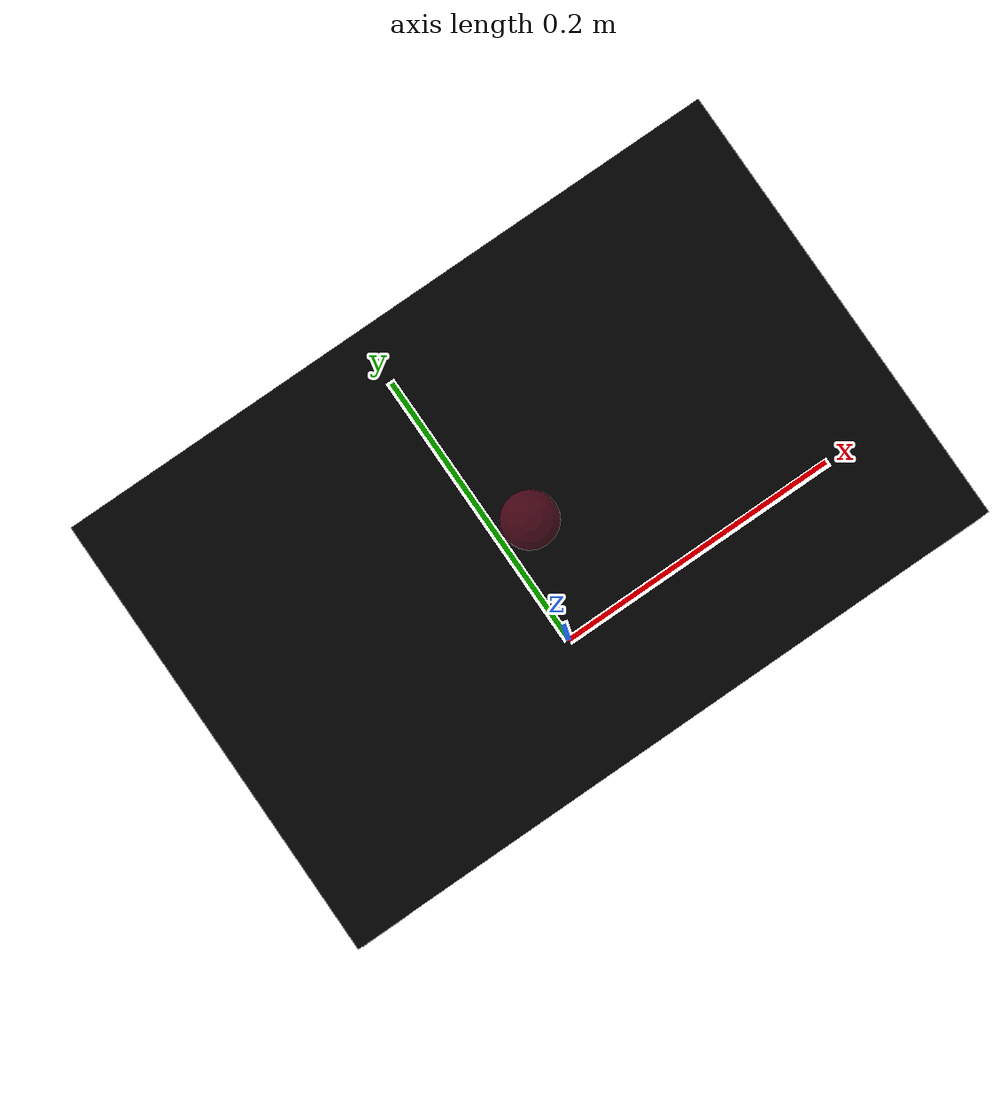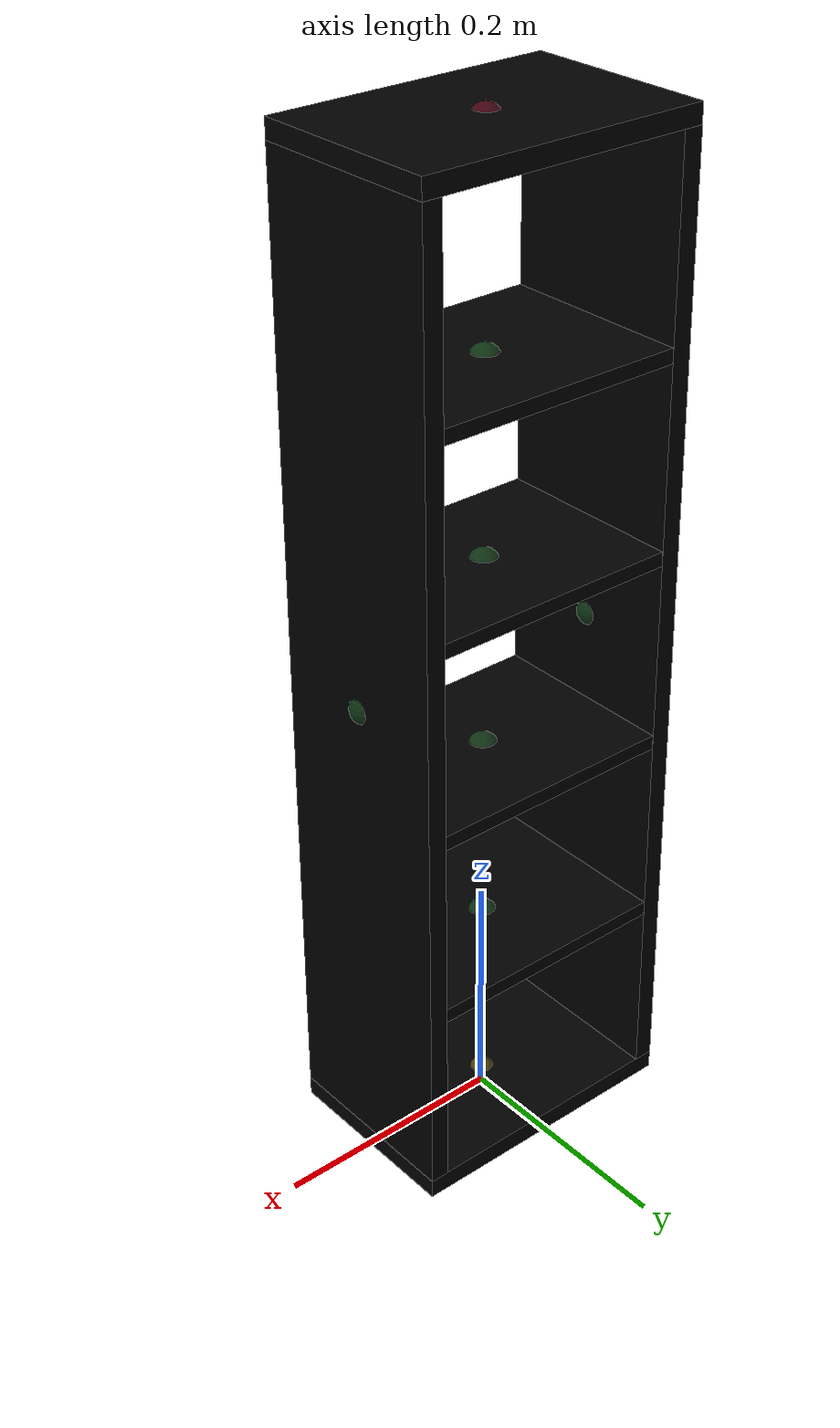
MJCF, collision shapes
<mujoco model="bookcase_expedit_0385">
  <custom>
    <numeric data="0.610909 0.185574 0.007996 0.0 -0.701463 0.712706 0.0" name="0_part0_initpos" />
    <numeric data="0.058502 0.312085 0.007896 0.707107 -1e-06 0.707107 1e-06" name="7_part7_initpos" />
    <numeric data="0.048989 0.082944 0.008098 0.000233 -0.707107 -0.000233 -0.707107" name="6_part6_initpos" />
    <numeric data="-0.494272 0.204526 0.008098 0.707633 0.0 -0.0 0.70658" name="5_part5_initpos" />
    <numeric data="-0.067446 -0.13918 0.006066 0.999964 -0.0 -0.0 -0.008531" name="4_part4_initpos" />
    <numeric data="0.484878 -0.138269 0.006169 0.999106 0.0 -0.0 0.042283" name="3_part3_initpos" />
    <numeric data="-0.336847 -0.116742 0.006066 0.99999 -0.0 -0.0 -0.004365" name="2_part2_initpos" />
    <numeric data="0.222327 -0.12981 0.006066 0.999952 0.0 0.0 -0.009838" name="1_part1_initpos" />
  </custom>
  <asset>
    <mesh file="bookcase_expedit_0385/0.stl" name="part0" scale="0.00064 0.00064 0.00064" />
    <mesh file="bookcase_expedit_0385/7.stl" name="part7" scale="0.00064 0.00064 0.00064" />
    <mesh file="bookcase_expedit_0385/6.stl" name="part6" scale="0.00064 0.00064 0.00064" />
    <mesh file="bookcase_expedit_0385/5.stl" name="part5" scale="0.00064 0.00064 0.00064" />
    <mesh file="bookcase_expedit_0385/4.stl" name="part4" scale="0.00064 0.00064 0.00064" />
    <mesh file="bookcase_expedit_0385/3.stl" name="part3" scale="0.00064 0.00064 0.00064" />
    <mesh file="bookcase_expedit_0385/2.stl" name="part2" scale="0.00064 0.00064 0.00064" />
    <mesh file="bookcase_expedit_0385/1.stl" name="part1" scale="0.00064 0.00064 0.00064" />
  </asset>
  <worldbody><body name="combined_body" pos="0 0 0.06940000000000004" quat="1 0 0 0"><geom conaffinity="0" contype="0" density="0" mesh="part0" name="0_part0_mesh" pos="0.0 -1.1520000000000002e-09 0.768000000064" rgba="0.82 0.71 0.55 1" type="mesh" quat="1 0 0 0" />
      <geom density="50" name="noviz_collision_0_part0_0" pos="0.0 -1.1520000000000002e-09 0.768000000064" quat="1 0 0 0" rgba="0 0 0 0" size="0.12192000000000001 0.08128000000000002 0.008077292800000002" solref="0.001 1" type="box" />
    <site name="0_part0_horizontal_radius_site" pos="0.0 -1.1520000000000002e-09 0.768000000064" quat="1 0 0 0" rgba="0 0 0 0" size="0.0128" />
      <site name="0_part0_top_site" pos="0.0 -1.1520000000000002e-09 0.768000000064" quat="1 0 0 0" rgba="0 0 0 0" size="0.0128" />
      <site name="0_part0_bottom_site" pos="0.0 -1.1520000000000002e-09 0.768000000064" quat="1 0 0 0" rgba="0 0 0 0" size="0.0128" />
      <site name="0_part0_corner_site8" pos="0.0 -1.1520000000000002e-09 0.768000000064" quat="1 0 0 0" rgba="0 0 0 0" size="0.0128" />
      <site name="0_part0_corner_site7" pos="0.0 -1.1520000000000002e-09 0.768000000064" quat="1 0 0 0" rgba="0 0 0 0" size="0.0128" />
      <site name="0_part0_corner_site6" pos="0.0 -1.1520000000000002e-09 0.768000000064" quat="1 0 0 0" rgba="0 0 0 0" size="0.0128" />
      <site name="0_part0_corner_site5" pos="0.0 -1.1520000000000002e-09 0.768000000064" quat="1 0 0 0" rgba="0 0 0 0" size="0.0128" />
      <site name="0_part0_corner_site4" pos="0.0 -1.1520000000000002e-09 0.768000000064" quat="1 0 0 0" rgba="0 0 0 0" size="0.0128" />
      <site name="0_part0_corner_site3" pos="0.0 -1.1520000000000002e-09 0.768000000064" quat="1 0 0 0" rgba="0 0 0 0" size="0.0128" />
      <site name="0_part0_corner_site2" pos="0.0 -1.1520000000000002e-09 0.768000000064" quat="1 0 0 0" rgba="0 0 0 0" size="0.0128" />
      <site name="0_part0_corner_site1" pos="0.0 -1.1520000000000002e-09 0.768000000064" quat="1 0 0 0" rgba="0 0 0 0" size="0.0128" />
      <site name="toppane-sidepane,0,180,conn_site2" pos="0.0 -1.1520000000000002e-09 0.768000000064" quat="1 0 0 0" rgba="0.9019 0.0980 0.2941 0.3" size="0.0128" />
      <site name="toppane-sidepane,0,180,conn_site1" pos="0.0 -1.1520000000000002e-09 0.768000000064" quat="1 0 0 0" rgba="0.9019 0.0980 0.2941 0.3" size="0.0128" />
      <geom conaffinity="0" contype="0" density="0" mesh="part7" name="7_part7_mesh" pos="0.11379199955200002 -1.1520000000000002e-09 0.35347198822400006" rgba="0.82 0.71 0.55 1" type="mesh" quat="1 0 0 0" />
      <geom density="50" name="noviz_collision_7_part7_0" pos="0.11379199955200002 -1.1520000000000002e-09 0.35347198822400006" quat="1 0 0 0" rgba="0 0 0 0" size="0.008027219200000001 0.08149465600000001 0.406400064" solref="0.001 1" type="box" />
    <site name="7_part7_horizontal_radius_site" pos="0.11379199955200002 -1.1520000000000002e-09 0.35347198822400006" quat="1 0 0 0" rgba="0 0 0 0" size="0.0128" />
      <site name="7_part7_top_site" pos="0.11379199955200002 -1.1520000000000002e-09 0.35347198822400006" quat="1 0 0 0" rgba="0 0 0 0" size="0.0128" />
      <site name="7_part7_bottom_site" pos="0.11379199955200002 -1.1520000000000002e-09 0.35347198822400006" quat="1 0 0 0" rgba="0 0 0 0" size="0.0128" />
      <site name="7_part7_corner_site8" pos="0.11379199955200002 -1.1520000000000002e-09 0.35347198822400006" quat="1 0 0 0" rgba="0 0 0 0" size="0.0128" />
      <site name="7_part7_corner_site7" pos="0.11379199955200002 -1.1520000000000002e-09 0.35347198822400006" quat="1 0 0 0" rgba="0 0 0 0" size="0.0128" />
      <site name="7_part7_corner_site6" pos="0.11379199955200002 -1.1520000000000002e-09 0.35347198822400006" quat="1 0 0 0" rgba="0 0 0 0" size="0.0128" />
      <site name="7_part7_corner_site5" pos="0.11379199955200002 -1.1520000000000002e-09 0.35347198822400006" quat="1 0 0 0" rgba="0 0 0 0" size="0.0128" />
      <site name="7_part7_corner_site4" pos="0.11379199955200002 -1.1520000000000002e-09 0.35347198822400006" quat="1 0 0 0" rgba="0 0 0 0" size="0.0128" />
      <site name="7_part7_corner_site3" pos="0.11379199955200002 -1.1520000000000002e-09 0.35347198822400006" quat="1 0 0 0" rgba="0 0 0 0" size="0.0128" />
      <site name="7_part7_corner_site2" pos="0.11379199955200002 -1.1520000000000002e-09 0.35347198822400006" quat="1 0 0 0" rgba="0 0 0 0" size="0.0128" />
      <site name="7_part7_corner_site1" pos="0.11379199955200002 -1.1520000000000002e-09 0.35347198822400006" quat="1 0 0 0" rgba="0 0 0 0" size="0.0128" />
      <site name="sidepane-horpane,0,180,conn_site8" pos="0.11379199955200002 -1.1520000000000002e-09 0.35347198822400006" quat="1 0 0 0" rgba="0.2352 0.7058 0.2941 0.3" size="0.0128" />
      <site name="sidepane-horpane,0,180,conn_site7" pos="0.11379199955200002 -1.1520000000000002e-09 0.35347198822400006" quat="1 0 0 0" rgba="0.2352 0.7058 0.2941 0.3" size="0.0128" />
      <site name="sidepane-horpane,0,180,conn_site6" pos="0.11379199955200002 -1.1520000000000002e-09 0.35347198822400006" quat="1 0 0 0" rgba="0.2352 0.7058 0.2941 0.3" size="0.0128" />
      <site name="sidepane-horpane,0,180,conn_site5" pos="0.11379199955200002 -1.1520000000000002e-09 0.35347198822400006" quat="1 0 0 0" rgba="0.2352 0.7058 0.2941 0.3" size="0.0128" />
      <site name="sidepane-botpane,0,180,conn_site2" pos="0.11379199955200002 -1.1520000000000002e-09 0.35347198822400006" quat="1 0 0 0" rgba="1.0 0.8823 0.0980 0.3" size="0.0128" />
      <site name="sidepane-toppane,0,180,conn_site2" pos="0.11379199955200002 -1.1520000000000002e-09 0.35347198822400006" quat="1 0 0 0" rgba="0.9019 0.0980 0.2941 0.3" size="0.0128" />
      <geom conaffinity="0" contype="0" density="0" mesh="part6" name="6_part6_mesh" pos="-0.11379199942400003 -1.1520000000000002e-09 0.35347198822400006" rgba="0.82 0.71 0.55 1" type="mesh" quat="1 0 0 0" />
      <geom density="50" name="noviz_collision_6_part6_0" pos="-0.11379199942400003 -1.1520000000000002e-09 0.35347198822400006" quat="1 0 0 0" rgba="0 0 0 0" size="0.0082287808 0.08149465600000001 0.406400064" solref="0.001 1" type="box" />
    <site name="6_part6_horizontal_radius_site" pos="-0.11379199942400003 -1.1520000000000002e-09 0.35347198822400006" quat="1 0 0 0" rgba="0 0 0 0" size="0.0128" />
      <site name="6_part6_top_site" pos="-0.11379199942400003 -1.1520000000000002e-09 0.35347198822400006" quat="1 0 0 0" rgba="0 0 0 0" size="0.0128" />
      <site name="6_part6_bottom_site" pos="-0.11379199942400003 -1.1520000000000002e-09 0.35347198822400006" quat="1 0 0 0" rgba="0 0 0 0" size="0.0128" />
      <site name="6_part6_corner_site8" pos="-0.11379199942400003 -1.1520000000000002e-09 0.35347198822400006" quat="1 0 0 0" rgba="0 0 0 0" size="0.0128" />
      <site name="6_part6_corner_site7" pos="-0.11379199942400003 -1.1520000000000002e-09 0.35347198822400006" quat="1 0 0 0" rgba="0 0 0 0" size="0.0128" />
      <site name="6_part6_corner_site6" pos="-0.11379199942400003 -1.1520000000000002e-09 0.35347198822400006" quat="1 0 0 0" rgba="0 0 0 0" size="0.0128" />
      <site name="6_part6_corner_site5" pos="-0.11379199942400003 -1.1520000000000002e-09 0.35347198822400006" quat="1 0 0 0" rgba="0 0 0 0" size="0.0128" />
      <site name="6_part6_corner_site4" pos="-0.11379199942400003 -1.1520000000000002e-09 0.35347198822400006" quat="1 0 0 0" rgba="0 0 0 0" size="0.0128" />
      <site name="6_part6_corner_site3" pos="-0.11379199942400003 -1.1520000000000002e-09 0.35347198822400006" quat="1 0 0 0" rgba="0 0 0 0" size="0.0128" />
      <site name="6_part6_corner_site2" pos="-0.11379199942400003 -1.1520000000000002e-09 0.35347198822400006" quat="1 0 0 0" rgba="0 0 0 0" size="0.0128" />
      <site name="6_part6_corner_site1" pos="-0.11379199942400003 -1.1520000000000002e-09 0.35347198822400006" quat="1 0 0 0" rgba="0 0 0 0" size="0.0128" />
      <site name="sidepane-horpane,0,180,conn_site4" pos="-0.11379199942400003 -1.1520000000000002e-09 0.35347198822400006" quat="1 0 0 0" rgba="0.2352 0.7058 0.2941 0.3" size="0.0128" />
      <site name="sidepane-horpane,0,180,conn_site3" pos="-0.11379199942400003 -1.1520000000000002e-09 0.35347198822400006" quat="1 0 0 0" rgba="0.2352 0.7058 0.2941 0.3" size="0.0128" />
      <site name="sidepane-horpane,0,180,conn_site2" pos="-0.11379199942400003 -1.1520000000000002e-09 0.35347198822400006" quat="1 0 0 0" rgba="0.2352 0.7058 0.2941 0.3" size="0.0128" />
      <site name="sidepane-horpane,0,180,conn_site1" pos="-0.11379199942400003 -1.1520000000000002e-09 0.35347198822400006" quat="1 0 0 0" rgba="0.2352 0.7058 0.2941 0.3" size="0.0128" />
      <site name="sidepane-botpane,0,180,conn_site1" pos="-0.11379199942400003 -1.1520000000000002e-09 0.35347198822400006" quat="1 0 0 0" rgba="1.0 0.8823 0.0980 0.3" size="0.0128" />
      <site name="sidepane-toppane,0,180,conn_site1" pos="-0.11379199942400003 -1.1520000000000002e-09 0.35347198822400006" quat="1 0 0 0" rgba="0.9019 0.0980 0.2941 0.3" size="0.0128" />
      <geom conaffinity="0" contype="0" density="0" mesh="part5" name="5_part5_mesh" pos="0.0 -1.1520000000000002e-09 -0.06105601561599994" rgba="0.82 0.71 0.55 1" type="mesh" quat="1 0 0 0" />
      <geom density="50" name="noviz_collision_5_part5_0" pos="0.0 -1.1520000000000002e-09 -0.06105601561599994" quat="1 0 0 0" rgba="0 0 0 0" size="0.12192000000000001 0.08128000000000002 0.008178668800000002" solref="0.001 1" type="box" />
    <site name="5_part5_horizontal_radius_site" pos="0.0 -1.1520000000000002e-09 -0.06105601561599994" quat="1 0 0 0" rgba="0 0 0 0" size="0.0128" />
      <site name="5_part5_top_site" pos="0.0 -1.1520000000000002e-09 -0.06105601561599994" quat="1 0 0 0" rgba="0 0 0 0" size="0.0128" />
      <site name="5_part5_bottom_site" pos="0.0 -1.1520000000000002e-09 -0.06105601561599994" quat="1 0 0 0" rgba="0 0 0 0" size="0.0128" />
      <site name="5_part5_corner_site8" pos="0.0 -1.1520000000000002e-09 -0.06105601561599994" quat="1 0 0 0" rgba="0 0 0 0" size="0.0128" />
      <site name="5_part5_corner_site7" pos="0.0 -1.1520000000000002e-09 -0.06105601561599994" quat="1 0 0 0" rgba="0 0 0 0" size="0.0128" />
      <site name="5_part5_corner_site6" pos="0.0 -1.1520000000000002e-09 -0.06105601561599994" quat="1 0 0 0" rgba="0 0 0 0" size="0.0128" />
      <site name="5_part5_corner_site5" pos="0.0 -1.1520000000000002e-09 -0.06105601561599994" quat="1 0 0 0" rgba="0 0 0 0" size="0.0128" />
      <site name="5_part5_corner_site4" pos="0.0 -1.1520000000000002e-09 -0.06105601561599994" quat="1 0 0 0" rgba="0 0 0 0" size="0.0128" />
      <site name="5_part5_corner_site3" pos="0.0 -1.1520000000000002e-09 -0.06105601561599994" quat="1 0 0 0" rgba="0 0 0 0" size="0.0128" />
      <site name="5_part5_corner_site2" pos="0.0 -1.1520000000000002e-09 -0.06105601561599994" quat="1 0 0 0" rgba="0 0 0 0" size="0.0128" />
      <site name="5_part5_corner_site1" pos="0.0 -1.1520000000000002e-09 -0.06105601561599994" quat="1 0 0 0" rgba="0 0 0 0" size="0.0128" />
      <site name="botpane-sidepane,0,180,conn_site2" pos="0.0 -1.1520000000000002e-09 -0.06105601561599994" quat="1 0 0 0" rgba="1.0 0.8823 0.0980 0.3" size="0.0128" />
      <site name="botpane-sidepane,0,180,conn_site1" pos="0.0 -1.1520000000000002e-09 -0.06105601561599994" quat="1 0 0 0" rgba="1.0 0.8823 0.0980 0.3" size="0.0128" />
      <geom conaffinity="0" contype="0" density="0" mesh="part4" name="4_part4_mesh" pos="1.984e-09 -1.1520000000000002e-09 0.10963198438399989" rgba="0.82 0.71 0.55 1" type="mesh" quat="1 0 0 0" />
      <geom density="50" name="noviz_collision_4_part4_0" pos="1.984e-09 -1.1520000000000002e-09 0.10963198438399989" quat="1 0 0 0" rgba="0 0 0 0" size="0.10566400000000001 0.08128000000000002 0.0060959360000000015" solref="0.001 1" type="box" />
    <site name="4_part4_horizontal_radius_site" pos="1.984e-09 -1.1520000000000002e-09 0.10963198438399989" quat="1 0 0 0" rgba="0 0 0 0" size="0.0128" />
      <site name="4_part4_top_site" pos="1.984e-09 -1.1520000000000002e-09 0.10963198438399989" quat="1 0 0 0" rgba="0 0 0 0" size="0.0128" />
      <site name="4_part4_bottom_site" pos="1.984e-09 -1.1520000000000002e-09 0.10963198438399989" quat="1 0 0 0" rgba="0 0 0 0" size="0.0128" />
      <site name="4_part4_corner_site8" pos="1.984e-09 -1.1520000000000002e-09 0.10963198438399989" quat="1 0 0 0" rgba="0 0 0 0" size="0.0128" />
      <site name="4_part4_corner_site7" pos="1.984e-09 -1.1520000000000002e-09 0.10963198438399989" quat="1 0 0 0" rgba="0 0 0 0" size="0.0128" />
      <site name="4_part4_corner_site6" pos="1.984e-09 -1.1520000000000002e-09 0.10963198438399989" quat="1 0 0 0" rgba="0 0 0 0" size="0.0128" />
      <site name="4_part4_corner_site5" pos="1.984e-09 -1.1520000000000002e-09 0.10963198438399989" quat="1 0 0 0" rgba="0 0 0 0" size="0.0128" />
      <site name="4_part4_corner_site4" pos="1.984e-09 -1.1520000000000002e-09 0.10963198438399989" quat="1 0 0 0" rgba="0 0 0 0" size="0.0128" />
      <site name="4_part4_corner_site3" pos="1.984e-09 -1.1520000000000002e-09 0.10963198438399989" quat="1 0 0 0" rgba="0 0 0 0" size="0.0128" />
      <site name="4_part4_corner_site2" pos="1.984e-09 -1.1520000000000002e-09 0.10963198438399989" quat="1 0 0 0" rgba="0 0 0 0" size="0.0128" />
      <site name="4_part4_corner_site1" pos="1.984e-09 -1.1520000000000002e-09 0.10963198438399989" quat="1 0 0 0" rgba="0 0 0 0" size="0.0128" />
      <site name="horpane-sidepane,0,180,conn_site5" pos="1.984e-09 -1.1520000000000002e-09 0.10963198438399989" quat="1 0 0 0" rgba="0.2352 0.7058 0.2941 0.3" size="0.0128" />
      <site name="horpane-sidepane,0,180,conn_site1" pos="1.984e-09 -1.1520000000000002e-09 0.10963198438399989" quat="1 0 0 0" rgba="0.2352 0.7058 0.2941 0.3" size="0.0128" />
      <geom conaffinity="0" contype="0" density="0" mesh="part3" name="3_part3_mesh" pos="1.984e-09 -1.1520000000000002e-09 0.27219198438400005" rgba="0.82 0.71 0.55 1" type="mesh" quat="1 0 0 0" />
      <geom density="50" name="noviz_collision_3_part3_0" pos="1.984e-09 -1.1520000000000002e-09 0.27219198438400005" quat="1 0 0 0" rgba="0 0 0 0" size="0.10566400000000001 0.08128000000000002 0.006096012800000001" solref="0.001 1" type="box" />
    <site name="3_part3_horizontal_radius_site" pos="1.984e-09 -1.1520000000000002e-09 0.27219198438400005" quat="1 0 0 0" rgba="0 0 0 0" size="0.0128" />
      <site name="3_part3_top_site" pos="1.984e-09 -1.1520000000000002e-09 0.27219198438400005" quat="1 0 0 0" rgba="0 0 0 0" size="0.0128" />
      <site name="3_part3_bottom_site" pos="1.984e-09 -1.1520000000000002e-09 0.27219198438400005" quat="1 0 0 0" rgba="0 0 0 0" size="0.0128" />
      <site name="3_part3_corner_site8" pos="1.984e-09 -1.1520000000000002e-09 0.27219198438400005" quat="1 0 0 0" rgba="0 0 0 0" size="0.0128" />
      <site name="3_part3_corner_site7" pos="1.984e-09 -1.1520000000000002e-09 0.27219198438400005" quat="1 0 0 0" rgba="0 0 0 0" size="0.0128" />
      <site name="3_part3_corner_site6" pos="1.984e-09 -1.1520000000000002e-09 0.27219198438400005" quat="1 0 0 0" rgba="0 0 0 0" size="0.0128" />
      <site name="3_part3_corner_site5" pos="1.984e-09 -1.1520000000000002e-09 0.27219198438400005" quat="1 0 0 0" rgba="0 0 0 0" size="0.0128" />
      <site name="3_part3_corner_site4" pos="1.984e-09 -1.1520000000000002e-09 0.27219198438400005" quat="1 0 0 0" rgba="0 0 0 0" size="0.0128" />
      <site name="3_part3_corner_site3" pos="1.984e-09 -1.1520000000000002e-09 0.27219198438400005" quat="1 0 0 0" rgba="0 0 0 0" size="0.0128" />
      <site name="3_part3_corner_site2" pos="1.984e-09 -1.1520000000000002e-09 0.27219198438400005" quat="1 0 0 0" rgba="0 0 0 0" size="0.0128" />
      <site name="3_part3_corner_site1" pos="1.984e-09 -1.1520000000000002e-09 0.27219198438400005" quat="1 0 0 0" rgba="0 0 0 0" size="0.0128" />
      <site name="horpane-sidepane,0,180,conn_site6" pos="1.984e-09 -1.1520000000000002e-09 0.27219198438400005" quat="1 0 0 0" rgba="0.2352 0.7058 0.2941 0.3" size="0.0128" />
      <site name="horpane-sidepane,0,180,conn_site2" pos="1.984e-09 -1.1520000000000002e-09 0.27219198438400005" quat="1 0 0 0" rgba="0.2352 0.7058 0.2941 0.3" size="0.0128" />
      <geom conaffinity="0" contype="0" density="0" mesh="part2" name="2_part2_mesh" pos="1.984e-09 -1.1520000000000002e-09 0.434751984384" rgba="0.82 0.71 0.55 1" type="mesh" quat="1 0 0 0" />
      <geom density="50" name="noviz_collision_2_part2_0" pos="1.984e-09 -1.1520000000000002e-09 0.434751984384" quat="1 0 0 0" rgba="0 0 0 0" size="0.10566400000000001 0.08128000000000002 0.006096012800000001" solref="0.001 1" type="box" />
    <site name="2_part2_horizontal_radius_site" pos="1.984e-09 -1.1520000000000002e-09 0.434751984384" quat="1 0 0 0" rgba="0 0 0 0" size="0.0128" />
      <site name="2_part2_top_site" pos="1.984e-09 -1.1520000000000002e-09 0.434751984384" quat="1 0 0 0" rgba="0 0 0 0" size="0.0128" />
      <site name="2_part2_bottom_site" pos="1.984e-09 -1.1520000000000002e-09 0.434751984384" quat="1 0 0 0" rgba="0 0 0 0" size="0.0128" />
      <site name="2_part2_corner_site8" pos="1.984e-09 -1.1520000000000002e-09 0.434751984384" quat="1 0 0 0" rgba="0 0 0 0" size="0.0128" />
      <site name="2_part2_corner_site7" pos="1.984e-09 -1.1520000000000002e-09 0.434751984384" quat="1 0 0 0" rgba="0 0 0 0" size="0.0128" />
      <site name="2_part2_corner_site6" pos="1.984e-09 -1.1520000000000002e-09 0.434751984384" quat="1 0 0 0" rgba="0 0 0 0" size="0.0128" />
      <site name="2_part2_corner_site5" pos="1.984e-09 -1.1520000000000002e-09 0.434751984384" quat="1 0 0 0" rgba="0 0 0 0" size="0.0128" />
      <site name="2_part2_corner_site4" pos="1.984e-09 -1.1520000000000002e-09 0.434751984384" quat="1 0 0 0" rgba="0 0 0 0" size="0.0128" />
      <site name="2_part2_corner_site3" pos="1.984e-09 -1.1520000000000002e-09 0.434751984384" quat="1 0 0 0" rgba="0 0 0 0" size="0.0128" />
      <site name="2_part2_corner_site2" pos="1.984e-09 -1.1520000000000002e-09 0.434751984384" quat="1 0 0 0" rgba="0 0 0 0" size="0.0128" />
      <site name="2_part2_corner_site1" pos="1.984e-09 -1.1520000000000002e-09 0.434751984384" quat="1 0 0 0" rgba="0 0 0 0" size="0.0128" />
      <site name="horpane-sidepane,0,180,conn_site7" pos="1.984e-09 -1.1520000000000002e-09 0.434751984384" quat="1 0 0 0" rgba="0.2352 0.7058 0.2941 0.3" size="0.0128" />
      <site name="horpane-sidepane,0,180,conn_site3" pos="1.984e-09 -1.1520000000000002e-09 0.434751984384" quat="1 0 0 0" rgba="0.2352 0.7058 0.2941 0.3" size="0.0128" />
      <geom conaffinity="0" contype="0" density="0" mesh="part1" name="1_part1_mesh" pos="1.984e-09 -1.1520000000000002e-09 0.5973120000000001" rgba="0.82 0.71 0.55 1" type="mesh" quat="1 0 0 0" />
      <geom density="50" name="noviz_collision_1_part1_0" pos="1.984e-09 -1.1520000000000002e-09 0.5973120000000001" quat="1 0 0 0" rgba="0 0 0 0" size="0.10566400000000001 0.08128000000000002 0.006096012800000001" solref="0.001 1" type="box" />
    <site name="1_part1_horizontal_radius_site" pos="1.984e-09 -1.1520000000000002e-09 0.5973120000000001" quat="1 0 0 0" rgba="0 0 0 0" size="0.0128" />
      <site name="1_part1_top_site" pos="1.984e-09 -1.1520000000000002e-09 0.5973120000000001" quat="1 0 0 0" rgba="0 0 0 0" size="0.0128" />
      <site name="1_part1_bottom_site" pos="1.984e-09 -1.1520000000000002e-09 0.5973120000000001" quat="1 0 0 0" rgba="0 0 0 0" size="0.0128" />
      <site name="1_part1_corner_site8" pos="1.984e-09 -1.1520000000000002e-09 0.5973120000000001" quat="1 0 0 0" rgba="0 0 0 0" size="0.0128" />
      <site name="1_part1_corner_site7" pos="1.984e-09 -1.1520000000000002e-09 0.5973120000000001" quat="1 0 0 0" rgba="0 0 0 0" size="0.0128" />
      <site name="1_part1_corner_site6" pos="1.984e-09 -1.1520000000000002e-09 0.5973120000000001" quat="1 0 0 0" rgba="0 0 0 0" size="0.0128" />
      <site name="1_part1_corner_site5" pos="1.984e-09 -1.1520000000000002e-09 0.5973120000000001" quat="1 0 0 0" rgba="0 0 0 0" size="0.0128" />
      <site name="1_part1_corner_site4" pos="1.984e-09 -1.1520000000000002e-09 0.5973120000000001" quat="1 0 0 0" rgba="0 0 0 0" size="0.0128" />
      <site name="1_part1_corner_site3" pos="1.984e-09 -1.1520000000000002e-09 0.5973120000000001" quat="1 0 0 0" rgba="0 0 0 0" size="0.0128" />
      <site name="1_part1_corner_site2" pos="1.984e-09 -1.1520000000000002e-09 0.5973120000000001" quat="1 0 0 0" rgba="0 0 0 0" size="0.0128" />
      <site name="1_part1_corner_site1" pos="1.984e-09 -1.1520000000000002e-09 0.5973120000000001" quat="1 0 0 0" rgba="0 0 0 0" size="0.0128" />
      <site name="horpane-sidepane,0,180,conn_site8" pos="1.984e-09 -1.1520000000000002e-09 0.5973120000000001" quat="1 0 0 0" rgba="0.2352 0.7058 0.2941 0.3" size="0.0128" />
      <site name="horpane-sidepane,0,180,conn_site4" pos="1.984e-09 -1.1520000000000002e-09 0.5973120000000001" quat="1 0 0 0" rgba="0.2352 0.7058 0.2941 0.3" size="0.0128" />
      </body></worldbody><actuator />
  <sensor />
  <contact />
  <default />
</mujoco>
